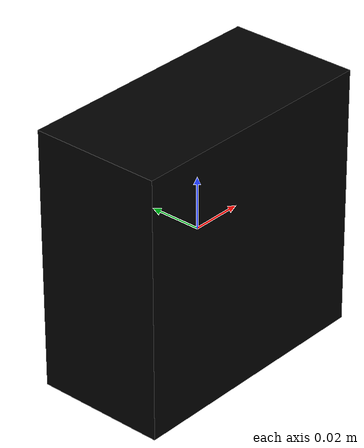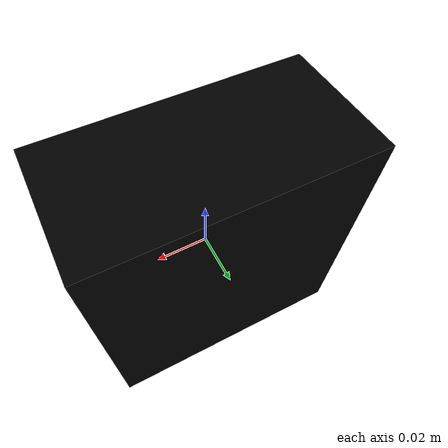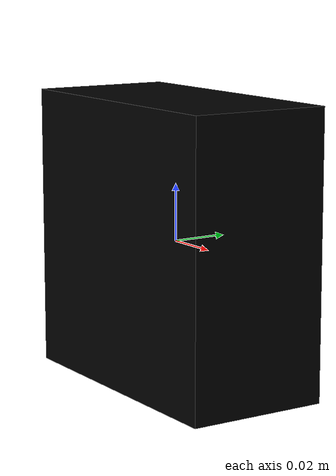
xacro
<?xml version="1.0" ?>

<robot name="simple_camera" xmlns:xacro="http://www.ros.org/wiki/xacro">
    <link name="base">
        <visual>
            <geometry>
                <box size=".1 .05 .1"/>
            </geometry>
            <origin xyz="0 0 0" rpy="0 0 0"/>
            <material name="black">
                <color rgba="0.0 0.0 0.0 1.0"/>
            </material>
        </visual>

        <collision>
            <geometry>
                <box size=".1 .05 .1"/>
            </geometry>
            <contact_coefficients mu="0" kp="1000.0" kd="1.0"/>
        </collision>

        <inertial>
            <mass value="1.0"/>
            <inertia ixx="1" ixy="0.0" ixz="0.0"
                     iyy="1" iyz="0.0"
                     izz="1"/>
        </inertial>
    </link>

                    <!--&lt;!&ndash; Noise is sampled independently per pixel on each frame.-->
                    <!--That pixel's noise value is added to each of its color-->
                    <!--channels, which at that point lie in the range [0,1]. &ndash;&gt;-->
                    <!--filename="libgazebo_ros_camera.so">-->
    <gazebo reference="base">
        <sensor name="depth_sensor" type="depth">
            <always_on>true</always_on>
            <update_rate>30.0</update_rate>
            <camera>
                <horizontal_fov>${70.0*3.14/180.0}</horizontal_fov>
                <image>
                    <width>512</width>
                    <height>424</height>
                    <format>L8</format>
                </image>
                <clip>
                    <near>0.5</near>
                    <far>4.5</far>
                </clip>
                <noise>
                    <type>gaussian</type>
                    <mean>0.0</mean>
                    <stddev>0.001</stddev>
                </noise>
            </camera>
            <plugin name="depth_sensor_controller"
                    filename="libgazebo_ros_openni_kinect.so">
                <cameraName>depth</cameraName>
                <alwaysOn>true</alwaysOn>
                <updateRate>30.0</updateRate>
                <imageTopicName>sd/image_ir_rect</imageTopicName>
                <depthImageTopicName>sd/image_depth_rect</depthImageTopicName>
                <pointCloudTopicName>sd/points</pointCloudTopicName>
                <cameraInfoTopicName>sd/camera_info</cameraInfoTopicName>
                <frameName>base</frameName>
                <pointCloudCutoff>0.5</pointCloudCutoff>
                <pointCloudCutoffMax>4.5</pointCloudCutoffMax>
                <baseline>0.1</baseline>
                <distortionK1>0.0</distortionK1>
                <distortionK2>0.0</distortionK2>
                <distortionK3>0.0</distortionK3>
                <distortionT1>0.0</distortionT1>
                <distortionT2>0.0</distortionT2>
                <robotNamespace>camera</robotNamespace>
            </plugin>
        </sensor>
    </gazebo>
</robot>
